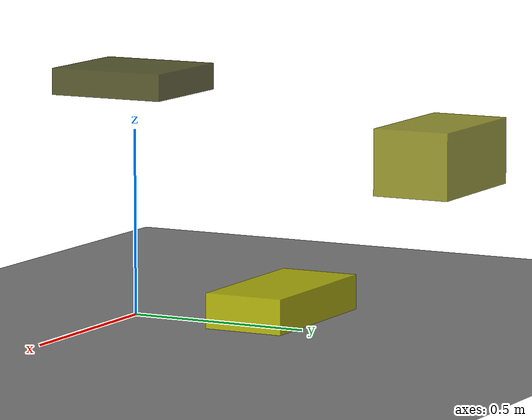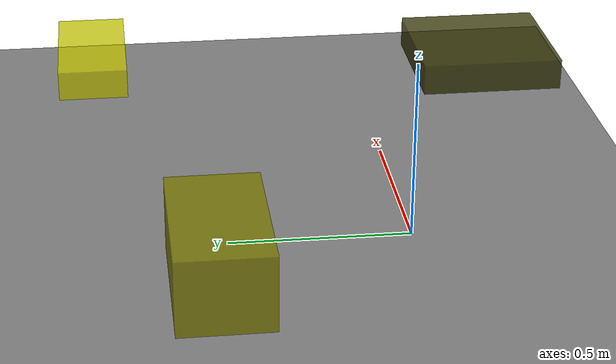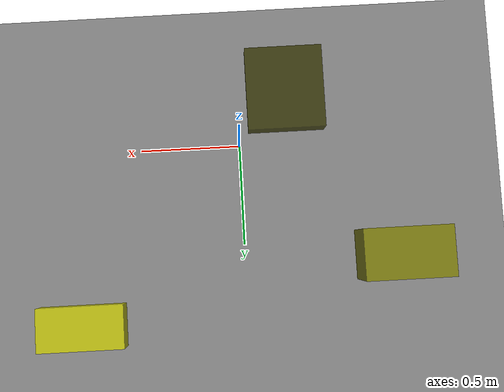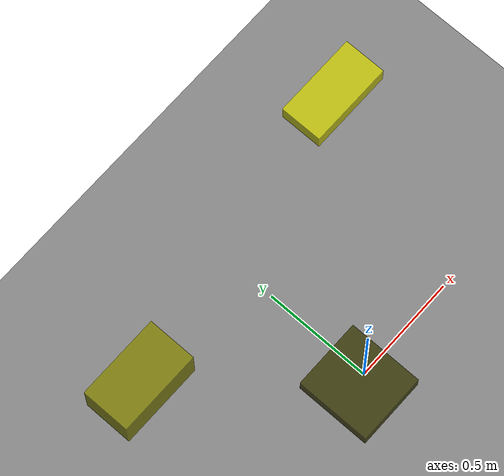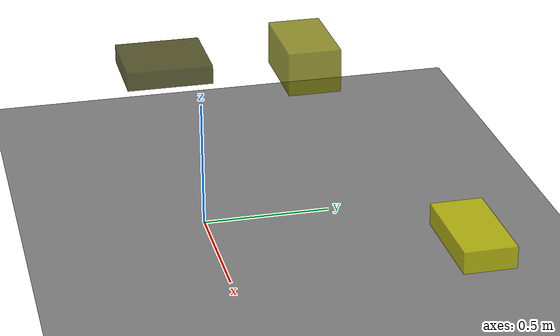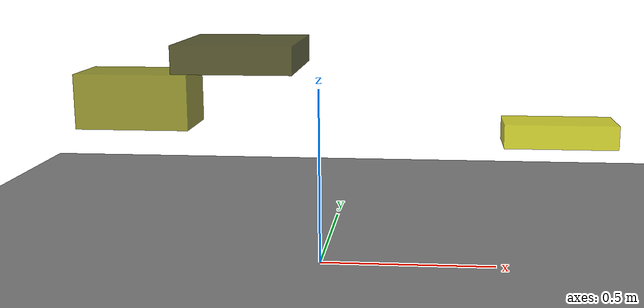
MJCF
<?xml version="1.0"?>
<mujoco model="obstacle_scene">
  <compiler angle="radian" coordinate="local"/>
  <option timestep="0.001" gravity="0 0 -9.81"/>

  <asset>
    <material name="obstacle_mat" rgba="0.8 0.8 0.0 0.8"/>
    <material name="ground_mat" rgba="0.5 0.5 0.5 1"/>
  </asset>

  <worldbody>
    <!-- Ground plane -->
    <geom name="ground" type="plane" size="3 3 0.1" material="ground_mat"/>

    <!-- Obstacles -->
    <body name="obstacle_0" pos="-0.185737 -0.109845 0.608939">
      <geom name="obs_0" type="box" size="0.152999 0.164090 0.035894" rgba="0.2 0.2 0.0 0.8"/>
    </body>
    <body name="obstacle_1" pos="-0.687948 0.573124 0.378584">
      <geom name="obs_1" type="box" size="0.191653 0.110627 0.092467" rgba="0.5 0.5 0.0 0.8"/>
    </body>
    <body name="obstacle_2" pos="0.768959 0.841882 0.227418">
      <geom name="obs_2" type="box" size="0.200186 0.099705 0.042606" rgba="0.8 0.8 0.0 0.8"/>
    </body>
  </worldbody>
</mujoco>
